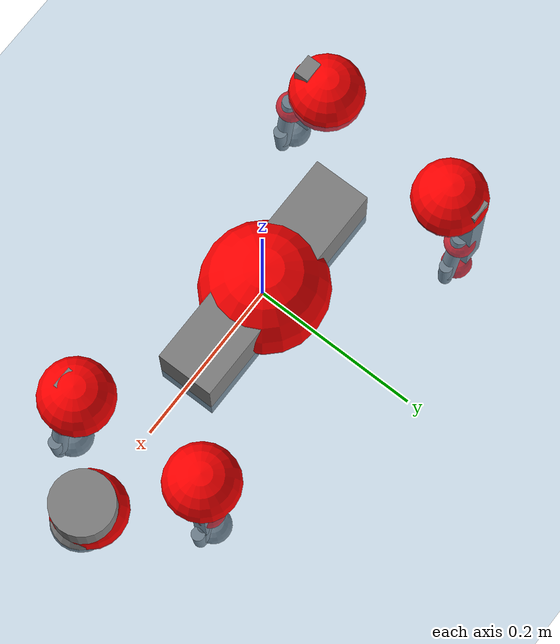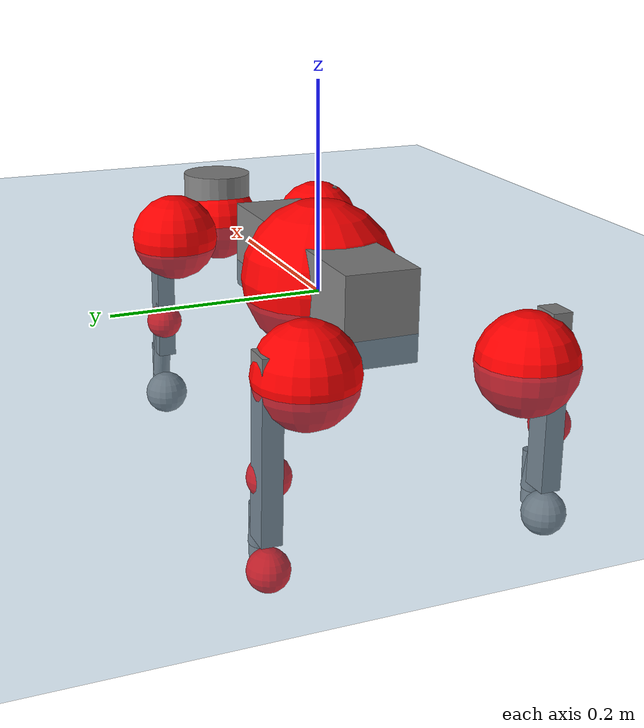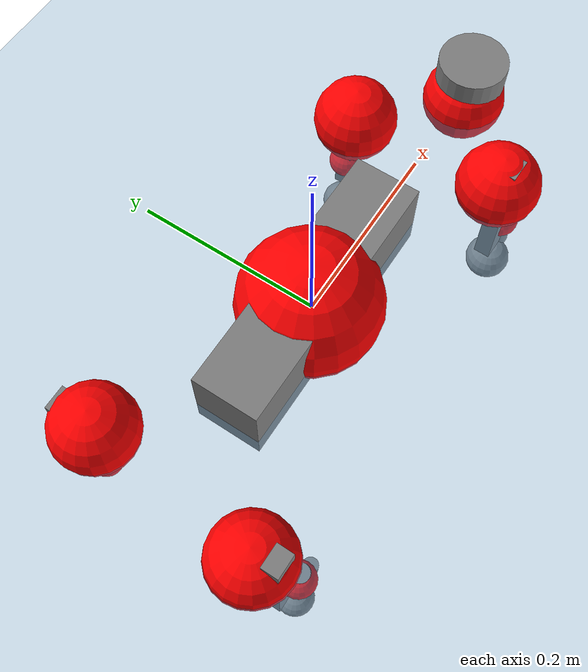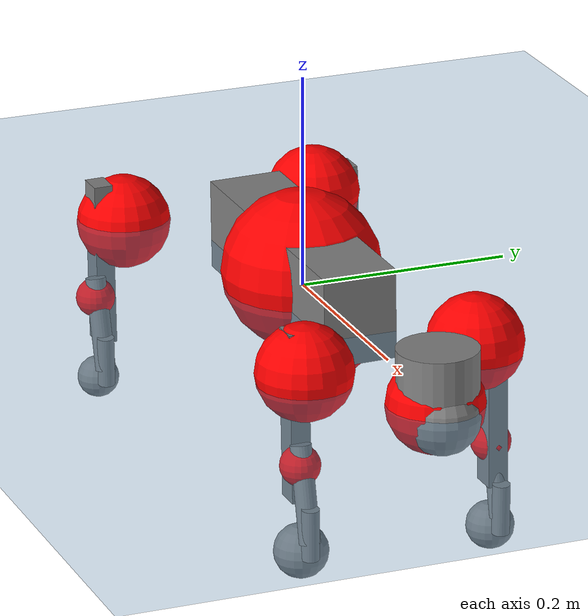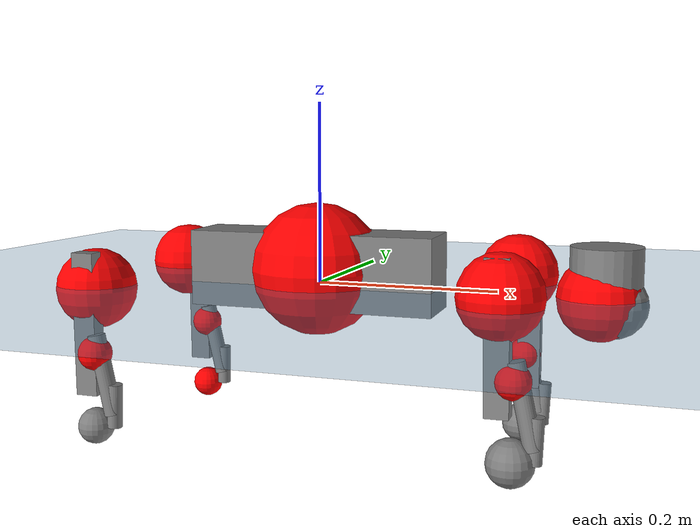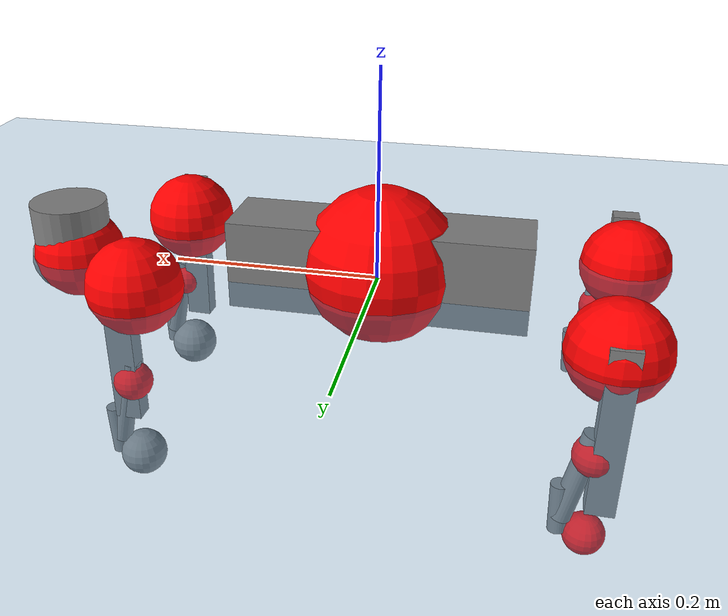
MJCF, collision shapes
<mujoco model="go2">
  <compiler angle="radian" assetdir="assets" balanceinertia="true" inertiafromgeom="false"/>

  <option timestep="0.005" density="1.2" viscosity="2e-05"/>

  <size nkey="1"/>

  <visual>
    <quality shadowsize="8192"/>
    <map shadowclip="0.5"/>
  </visual>

  <default>
    <default class="/">
      <geom contype="0" conaffinity="0" group="1" solref="-1000 -80"/>
      <site size="0.01 0.005 0.005" group="5"/>
      <general forcelimited="true" biastype="affine" gainprm="20" biasprm="0 -20 -0.5"/>
      <default class="go2">
        <joint armature="0.01" damping="0.01" frictionloss="0.2"/>
        <geom condim="1" margin="0.001"/>
        <default class="visual">
          <geom type="mesh" group="2"/>
        </default>
        <default class="collision">
          <geom group="3"/>
          <default class="foot">
            <geom size="0.022 0 0" condim="6" priority="1" friction="0.8 0.02 0.01" solimp="0.015 1 0.022"/>
          </default>
        </default>
        <default class="reward_collision_sphere">
          <geom group="5" rgba="1 0 0 1"/>
        </default>
      </default>
    </default>
  </default>

  <asset>
    <texture type="skybox" colorspace="auto" name="//unnamed_texture_0" builtin="gradient" rgb1="0.95 0.95 0.95" rgb2="0.95 0.95 0.95" width="100" height="600"/>
    <texture type="2d" colorspace="auto" name="texplane" builtin="checker" rgb1="0.345 0.575 0.748" rgb2="0.345 0.575 0.748" markrgb="1 1 1" width="512" height="512"/>
    <material name="MatPlane" class="/" texture="texplane" texuniform="true" texrepeat="2 2" specular="0.9"/>
    <material name="metal" class="/" rgba="0.9 0.95 0.95 1"/>
    <material name="black" class="/" rgba="0 0 0 1"/>
    <material name="white" class="/"/>
    <material name="gray" class="/" rgba="0.671705 0.692426 0.77427 1"/>
    <mesh name="base_0" class="/" file="base_0.obj"/>
    <mesh name="base_1" class="/" file="base_1.obj"/>
    <mesh name="base_2" class="/" file="base_2.obj"/>
    <mesh name="base_3" class="/" file="base_3.obj"/>
    <mesh name="base_4" class="/" file="base_4.obj"/>
    <mesh name="hip_0" class="/" file="hip_0.obj"/>
    <mesh name="hip_1" class="/" file="hip_1.obj"/>
    <mesh name="thigh_0" class="/" file="thigh_0.obj"/>
    <mesh name="thigh_1" class="/" file="thigh_1.obj"/>
    <mesh name="thigh_mirror_0" class="/" file="thigh_mirror_0.obj"/>
    <mesh name="thigh_mirror_1" class="/" file="thigh_mirror_1.obj"/>
    <mesh name="calf_0" class="/" file="calf_0.obj"/>
    <mesh name="calf_1" class="/" file="calf_1.obj"/>
    <mesh name="calf_mirror_0" class="/" file="calf_mirror_0.obj"/>
    <mesh name="calf_mirror_1" class="/" file="calf_mirror_1.obj"/>
    <mesh name="foot" class="/" file="foot.obj"/>
  </asset>

  <worldbody>
    <geom name="floor" class="/" size="100 100 0.125" type="plane" group="0" material="MatPlane"/>
    <light name="toplight_shadow" class="/" pos="0 0 5" dir="0.0990148 0.0990148 -0.990148" type="directional" ambient="0.04 0.04 0.04" diffuse="0.55 0.55 0.55" specular="0.12 0.12 0.12"/>
    <light name="toplight_fill" class="/" pos="0 0 5" dir="0.0990148 0.0990148 -0.990148" type="directional" castshadow="false" ambient="0.04 0.04 0.04" diffuse="0.3 0.3 0.3" specular="0.08 0.08 0.08"/>
    <body name="trunk" childclass="go2" pos="-0.00326088 5.63241e-05 0.0156493" quat="0.999973 0.00728805 0.000481751 0.000389273">
      <inertial pos="0.0208637 -0.0127879 0.000375186" quat="0.0285296 0.753344 -0.027681 0.656424" mass="2.58397" diaginertia="0.143849 0.0185336 0.000160953"/>
      <joint name="//unnamed_joint_0" type="free" armature="0" damping="0" frictionloss="0"/>
      <geom name="//unnamed_geom_1" class="visual" material="black" mesh="base_0"/>
      <geom name="//unnamed_geom_2" class="visual" material="black" mesh="base_1"/>
      <geom name="//unnamed_geom_3" class="visual" material="black" mesh="base_2"/>
      <geom name="//unnamed_geom_4" class="visual" material="white" mesh="base_3"/>
      <geom name="//unnamed_geom_5" class="visual" material="gray" mesh="base_4"/>
      <geom name="trunk_1" class="collision" size="0.139749 0.0347329 0.0423482" type="box"/>
      <geom name="trunk_2" class="collision" size="0.0371475 0.0334328" pos="0.314144 0 0.00384746" type="cylinder"/>
      <geom name="trunk_3" class="collision" size="0.0349187" pos="0.322962 0 -0.0230848"/>
      <geom name="//unnamed_geom_9" class="reward_collision_sphere" size="0.0742951"/>
      <geom name="//unnamed_geom_10" class="reward_collision_sphere" size="0.044577" pos="0.308633 0 -0.0173136"/>
      <site name="imu" pos="-0.0501227 -0.0485142 0.0773465" size="0.00742951"/>
      <camera name="track" pos="0 -1.48369 0" quat="0.707107 0.707107 0 0" mode="trackcom"/>
      <camera name="ego_camera" pos="0.343905 0 0.0173136" quat="-0.5 -0.5 0.5 0.5"/>
      <body name="FL_hip" pos="0.212834 0.0278243 -0.00733091" quat="1 0.000698682 0.000418031 0.000491712">
        <inertial pos="0.00814959 0.00199689 0.0151497" quat="0.538619 0.515312 0.442799 0.498269" mass="0.307928" diaginertia="0.00137644 0.000160899 4.48646e-06"/>
        <joint name="FL_hip_joint" pos="0 0 0" axis="0.997753 -0.0286723 0.060557" stiffness="0.057898" range="-1.04035 0.864686" armature="0.00771778" damping="0.0661097" frictionloss="0.0814268"/>
        <geom name="//unnamed_geom_11" class="visual" material="metal" mesh="hip_0"/>
        <geom name="//unnamed_geom_12" class="visual" material="gray" mesh="hip_1"/>
        <geom name="//unnamed_geom_13" class="collision" size="0.0341757 0.014859" pos="0 0.0593477 0" quat="0.707107 0.707107 0 0" type="cylinder"/>
        <geom name="//unnamed_geom_14" class="reward_collision_sphere" size="0.044577" pos="0 0.0519293 0"/>
        <body name="FL_thigh" pos="0.0125303 0.0628801 -0.0120645" quat="1 -3.86933e-05 -2.98361e-05 -3.47864e-05">
          <inertial pos="-0.00412906 -0.0167194 -0.0106573" quat="0.827572 0.0963469 -0.0492673 0.550831" mass="0.517505" diaginertia="0.010664 0.0015379 1.00236e-05"/>
          <joint name="FL_thigh_joint" pos="0 0 0" axis="-0.00268532 0.999996 -0.000374442" stiffness="0.00186945" range="-1.38401 3.53514" armature="0.0111191" damping="0" frictionloss="0.147313"/>
          <geom name="//unnamed_geom_15" class="visual" material="metal" mesh="thigh_0"/>
          <geom name="//unnamed_geom_16" class="visual" material="gray" mesh="thigh_1"/>
          <geom name="//unnamed_geom_17" class="collision" size="0.0791243 0.00910115 0.0126302" pos="0 0 -0.0409754" quat="0.707107 0 0.707107 0" type="box"/>
          <body name="FL_calf" pos="-0.00548708 0.000754893 -0.0827161" quat="1 -0.000108314 -0.000668617 7.76833e-05">
            <inertial pos="0.0237497 0.0145051 -0.0538674" quat="0.714129 -0.00463843 -0.00648752 0.699969" mass="0.100349" diaginertia="0.00290763 0.000322912 4.55512e-07"/>
            <joint name="FL_calf_joint" pos="0 0 0" axis="-0.0122523 0.99966 0.0230099" stiffness="0.0106749" range="-2.39166 -1.03161" armature="0.0100361" damping="0.0316988" frictionloss="0.0293681"/>
            <geom name="//unnamed_geom_18" class="visual" material="gray" mesh="calf_0"/>
            <geom name="//unnamed_geom_19" class="visual" material="black" mesh="calf_1"/>
            <geom name="FL_calf0" class="collision" size="0.00891541 0.044577" pos="0.00881808 0 -0.0230848" quat="0.994493 0 -0.104807 0" type="cylinder"/>
            <geom name="//unnamed_geom_21" class="collision" size="0.00817246 0.0241459" pos="0.0220452 0 -0.0569424" quat="0.999688 0 0.0249974 0" type="cylinder"/>
            <geom name="//unnamed_geom_22" class="visual" pos="0 0 -0.0819509" quat="1 0 0 0" material="black" mesh="foot"/>
            <geom name="FL_foot" class="foot" size="0.0221679" pos="-0.00220452 0 -0.0819509"/>
            <geom name="//unnamed_geom_24" class="reward_collision_sphere" size="0.0185738"/>
            <geom name="//unnamed_geom_25" class="reward_collision_sphere" size="0.0185738" pos="-0.00220452 0 -0.0819509"/>
            <site name="FL_foot" class="foot" pos="-0.00220452 0 -0.0819509" size="0.00742951"/>
          </body>
        </body>
      </body>
      <body name="FR_hip" pos="0.222605 -0.0349927 -0.00552795" quat="0.999968 -0.00216323 -0.00334277 -0.00697455">
        <inertial pos="0.00138178 -0.00387345 0.00348717" quat="0.53144 0.53557 0.494311 0.431733" mass="0.240138" diaginertia="0.00146942 0.000145829 4.16847e-06"/>
        <joint name="FR_hip_joint" pos="0 0 0" axis="0.998932 0.0177108 0.0426698" stiffness="0.0648778" range="-0.73655 1.2281" armature="0.00569359" damping="0.0599733" frictionloss="0.0707579"/>
        <geom name="//unnamed_geom_26" class="visual" pos="0 3.11091e-09 1.33433e-07" quat="4.63268e-05 1 0 0" material="metal" mesh="hip_0"/>
        <geom name="//unnamed_geom_27" class="visual" pos="0 5.04316e-09 -3.30032e-07" quat="4.63268e-05 1 0 0" material="gray" mesh="hip_1"/>
        <geom name="//unnamed_geom_28" class="collision" size="0.0341757 0.014859" pos="0 -0.0593477 0" quat="0.707107 0.707107 0 0" type="cylinder"/>
        <geom name="//unnamed_geom_29" class="reward_collision_sphere" size="0.044577" pos="0 -0.0519293 0"/>
        <body name="FR_thigh" pos="-0.000527453 -0.0611006 0.00208069" quat="0.999992 0.0017816 -0.00339657 -0.0011941">
          <inertial pos="0.00437302 0.0160625 -0.00619313" quat="0.548667 -0.000496146 0.105878 0.829309" mass="0.397265" diaginertia="0.00941512 0.0015041 6.60696e-06"/>
          <joint name="FR_thigh_joint" pos="0 0 0" axis="0.00156192 -0.999999 0.000582054" range="-3.49845 1.76177" armature="0.0107955" damping="0.085799" frictionloss="0.240313"/>
          <geom name="//unnamed_geom_30" class="visual" material="metal" mesh="thigh_mirror_0"/>
          <geom name="//unnamed_geom_31" class="visual" material="gray" mesh="thigh_mirror_1"/>
          <geom name="//unnamed_geom_32" class="collision" size="0.0791243 0.00910115 0.0126302" pos="0 0 -0.0409754" quat="0.707107 0 0.707107 0" type="box"/>
          <body name="FR_calf" pos="0.0154416 -0.00225694 -0.0828244" quat="0.999997 0.0018979 0.00112922 0.000760844">
            <inertial pos="0.0124137 0.0147511 -0.0668261" quat="0.661388 0.0472734 0.0307098 0.747923" mass="0.122431" diaginertia="0.00293203 0.000321869 5.96892e-07"/>
            <joint name="FR_calf_joint" pos="0 0 0" axis="0.00605178 -0.999964 -0.00587132" stiffness="0.0246313" range="0.861327 2.78792" armature="0.00806452" damping="0.0602143" frictionloss="0.212353"/>
            <geom name="//unnamed_geom_33" class="visual" material="gray" mesh="calf_mirror_0"/>
            <geom name="//unnamed_geom_34" class="visual" material="black" mesh="calf_mirror_1"/>
            <geom name="FR_calf0" class="collision" size="0.00965836 0.044577" pos="0.0110226 0 -0.0230848" quat="0.995004 0 -0.0998334 0" type="cylinder"/>
            <geom name="//unnamed_geom_36" class="collision" size="0.00817246 0.0241459" pos="0.0220452 0 -0.0569424" quat="0.999688 0 0.0249974 0" type="cylinder"/>
            <geom name="//unnamed_geom_37" class="visual" pos="0 0 -0.0819509" quat="1 0 0 0" material="black" mesh="foot"/>
            <geom name="FR_foot" class="foot" size="0.0249602" pos="-0.00220452 0 -0.0819509"/>
            <geom name="//unnamed_geom_39" class="reward_collision_sphere" size="0.0185738"/>
            <geom name="//unnamed_geom_40" class="reward_collision_sphere" size="0.0185738" pos="-0.00220452 0 -0.0819509"/>
            <site name="FR_foot" class="foot" pos="-0.00220452 0 -0.0819509" size="0.00742951"/>
          </body>
        </body>
      </body>
      <body name="RL_hip" pos="-0.211273 0.0454251 -0.011207" quat="0.999995 -0.00246659 -0.000831739 0.00169223">
        <inertial pos="0.0121344 0.0155406 0.0156891" quat="0.514589 0.523178 0.477435 0.483259" mass="0.322953" diaginertia="0.00178305 0.000136102 5.21844e-06"/>
        <joint name="RL_hip_joint" pos="0 0 0" axis="-0.99774 0.0114978 0.0661988" range="-0.776104 0.759272" armature="0.00252768" damping="0.00536432" frictionloss="0.144977"/>
        <geom name="//unnamed_geom_41" class="visual" pos="-6.25068e-09 0 -1.22528e-06" quat="4.63268e-05 0 1 0" material="metal" mesh="hip_0"/>
        <geom name="//unnamed_geom_42" class="visual" pos="-1.01331e-08 0 -1.08665e-06" quat="4.63268e-05 0 1 0" material="gray" mesh="hip_1"/>
        <geom name="//unnamed_geom_43" class="collision" size="0.0341757 0.014859" pos="0 0.0593477 0" quat="0.707107 0.707107 0 0" type="cylinder"/>
        <geom name="//unnamed_geom_44" class="reward_collision_sphere" size="0.044577" pos="0 0.0519293 0"/>
        <body name="RL_thigh" pos="-0.000741406 0.0842486 -0.0152915" quat="0.999983 0.00566042 -0.000911884 0.000628331">
          <inertial pos="-0.02054 -0.00499094 0.00367643" quat="0.829663 0.0846824 -0.0204293 0.551427" mass="0.38043" diaginertia="0.00623644 0.000988871 5.0406e-06"/>
          <joint name="RL_thigh_joint" pos="0 0 0" axis="0.0567135 0.996686 -0.0583174" range="-0.315429 4.502" armature="0.00613608" damping="0.0879401" frictionloss="0.0883065"/>
          <geom name="//unnamed_geom_45" class="visual" material="metal" mesh="thigh_0"/>
          <geom name="//unnamed_geom_46" class="visual" material="gray" mesh="thigh_1"/>
          <geom name="//unnamed_geom_47" class="collision" size="0.0791243 0.00910115 0.0126302" pos="0 0 -0.0409754" quat="0.707107 0 0.707107 0" type="box"/>
          <body name="RL_calf" pos="0.00991538 -0.00548063 -0.0701089" quat="0.999981 0.0016667 -0.00495779 0.00319642">
            <inertial pos="0.0222346 -0.0115174 -0.0385041" quat="0.74969 -0.0189023 -0.0393669 0.660347" mass="0.110551" diaginertia="0.00279073 0.000416901 4.61545e-07"/>
            <joint name="RL_calf_joint" pos="0 0 0" axis="-0.000365022 1 0.000243752" stiffness="0.0207532" range="-2.80309 -0.502424" armature="0.0024813" damping="0.0825559" frictionloss="0.145429"/>
            <geom name="//unnamed_geom_48" class="visual" material="gray" mesh="calf_0"/>
            <geom name="//unnamed_geom_49" class="visual" material="black" mesh="calf_1"/>
            <geom name="RL_calf0" class="collision" size="0.00965836 0.044577" pos="0.0110226 0 -0.0230848" quat="0.995004 0 -0.0998334 0" type="cylinder"/>
            <geom name="//unnamed_geom_51" class="collision" size="0.00817246 0.0241459" pos="0.0220452 0 -0.0569424" quat="0.999688 0 0.0249974 0" type="cylinder"/>
            <geom name="//unnamed_geom_52" class="visual" pos="0 0 -0.0819509" quat="1 0 0 0" material="black" mesh="foot"/>
            <geom name="RL_foot" class="foot" size="0.0119812" pos="-0.00220452 0 -0.0819509"/>
            <geom name="//unnamed_geom_54" class="reward_collision_sphere" size="0.0185738"/>
            <geom name="//unnamed_geom_55" class="reward_collision_sphere" size="0.0185738" pos="-0.00220452 0 -0.0819509"/>
            <site name="RL_foot" class="foot" pos="-0.00220452 0 -0.0819509" size="0.00742951"/>
          </body>
        </body>
      </body>
      <body name="RR_hip" pos="-0.229802 -0.0372433 -0.019444" quat="0.999999 0.000753596 0.000121528 0.000904556">
        <inertial pos="0.0185658 0.00846116 -0.000846186" quat="0.558973 0.485845 0.467588 0.48256" mass="0.270824" diaginertia="0.000940957 0.000106483 2.88523e-06"/>
        <joint name="RR_hip_joint" pos="0 0 0" axis="-0.996492 -0.0836339 0.00294807" range="-0.881929 1.03996" armature="0.00766618" damping="0.020427" frictionloss="0.0258493"/>
        <geom name="//unnamed_geom_56" class="visual" pos="6.2382e-09 3.11091e-09 -1.35871e-06" quat="2.14617e-09 4.63268e-05 4.63268e-05 -1" material="metal" mesh="hip_0"/>
        <geom name="//unnamed_geom_57" class="visual" pos="1.0164e-08 5.04316e-09 -7.56615e-07" quat="2.14617e-09 4.63268e-05 4.63268e-05 -1" material="gray" mesh="hip_1"/>
        <geom name="//unnamed_geom_58" class="collision" size="0.0341757 0.014859" pos="0 -0.0593477 0" quat="0.707107 0.707107 0 0" type="cylinder"/>
        <geom name="//unnamed_geom_59" class="reward_collision_sphere" size="0.044577" pos="0 -0.0519293 0"/>
        <body name="RR_thigh" pos="0.00327223 -0.0769193 0.00516129" quat="0.999999 0.000559563 0.00128826 -0.000810474">
          <inertial pos="-0.0118725 0.0257066 0.00138411" quat="0.573909 0.0215355 0.102485 0.812195" mass="0.612402" diaginertia="0.00868727 0.00142008 7.47712e-06"/>
          <joint name="RR_thigh_joint" pos="0 0 0" axis="-0.0116746 -0.999218 0.0377849" range="-4.54361 0.765826" armature="0.00792994" damping="0.0367923" frictionloss="0.189752"/>
          <geom name="//unnamed_geom_60" class="visual" material="metal" mesh="thigh_mirror_0"/>
          <geom name="//unnamed_geom_61" class="visual" material="gray" mesh="thigh_mirror_1"/>
          <geom name="//unnamed_geom_62" class="collision" size="0.0791243 0.00910115 0.0126302" pos="0 0 -0.0409754" quat="0.707107 0 0.707107 0" type="box"/>
          <body name="RR_calf" pos="0.0148538 -0.0119341 -0.0703638" quat="0.999965 0.00788818 0.00268851 0.00106863">
            <inertial pos="0.000568134 -0.000701223 -0.0547864" quat="0.65408 -0.0190585 0.0225798 0.755848" mass="0.0914378" diaginertia="0.00222562 0.000255305 4.64103e-07"/>
            <joint name="RR_calf_joint" pos="0 0 0" axis="0.0770435 -0.996748 -0.0236266" stiffness="0.0737601" range="0.567124 2.82991" armature="0.00731617" damping="0.0777764" frictionloss="0.190848"/>
            <geom name="//unnamed_geom_63" class="visual" material="gray" mesh="calf_mirror_0"/>
            <geom name="//unnamed_geom_64" class="visual" material="black" mesh="calf_mirror_1"/>
            <geom name="RR_calf0" class="collision" size="0.00965836 0.044577" pos="0.0110226 0 -0.0230848" quat="0.995004 0 -0.0998334 0" type="cylinder"/>
            <geom name="//unnamed_geom_66" class="collision" size="0.00817246 0.0241459" pos="0.0220452 0 -0.0569424" quat="0.999688 0 0.0249974 0" type="cylinder"/>
            <geom name="//unnamed_geom_67" class="visual" pos="0 0 -0.0819509" quat="1 0 0 0" material="black" mesh="foot"/>
            <geom name="RR_foot" class="foot" size="0.0197964" pos="-0.00220452 0 -0.0819509"/>
            <geom name="//unnamed_geom_69" class="reward_collision_sphere" size="0.0185738"/>
            <geom name="//unnamed_geom_70" class="reward_collision_sphere" size="0.0185738" pos="-0.00220452 0 -0.0819509"/>
            <site name="RR_foot" class="foot" pos="-0.00220452 0 -0.0819509" size="0.00742951"/>
          </body>
        </body>
      </body>
    </body>
  </worldbody>

  <contact>
    <pair class="/" geom1="floor" geom2="FL_foot" name="//unnamed_contact_0"/>
    <pair class="/" geom1="floor" geom2="FR_foot" name="//unnamed_contact_1"/>
    <pair class="/" geom1="floor" geom2="RL_foot" name="//unnamed_contact_2"/>
    <pair class="/" geom1="floor" geom2="RR_foot" name="//unnamed_contact_3"/>
  </contact>

  <actuator>
    <general name="FL_hip" class="/" joint="FL_hip_joint" forcerange="-18.0473 18.0473" gainprm="13.1809" biasprm="0 -13.1809 -0.423933"/>
    <general name="FL_thigh" class="/" joint="FL_thigh_joint" forcerange="-14.804 14.804" gainprm="13.1809" biasprm="0 -13.1809 -0.423933"/>
    <general name="FL_calf" class="/" joint="FL_calf_joint" forcerange="-21.7167 21.7167" gainprm="13.1809" biasprm="0 -13.1809 -0.423933"/>
    <general name="FR_hip" class="/" joint="FR_hip_joint" forcerange="-20.2013 20.2013" gainprm="13.1809" biasprm="0 -13.1809 -0.423933"/>
    <general name="FR_thigh" class="/" joint="FR_thigh_joint" forcerange="-11.5302 11.5302" gainprm="13.1809" biasprm="0 -13.1809 -0.423933"/>
    <general name="FR_calf" class="/" joint="FR_calf_joint" forcerange="-34.0942 34.0942" gainprm="13.1809" biasprm="0 -13.1809 -0.423933"/>
    <general name="RL_hip" class="/" joint="RL_hip_joint" forcerange="-18.4005 18.4005" gainprm="13.1809" biasprm="0 -13.1809 -0.423933"/>
    <general name="RL_thigh" class="/" joint="RL_thigh_joint" forcerange="-27.8454 27.8454" gainprm="13.1809" biasprm="0 -13.1809 -0.423933"/>
    <general name="RL_calf" class="/" joint="RL_calf_joint" forcerange="-15.8823 15.8823" gainprm="13.1809" biasprm="0 -13.1809 -0.423933"/>
    <general name="RR_hip" class="/" joint="RR_hip_joint" forcerange="-17.9296 17.9296" gainprm="13.1809" biasprm="0 -13.1809 -0.423933"/>
    <general name="RR_thigh" class="/" joint="RR_thigh_joint" forcerange="-22.084 22.084" gainprm="13.1809" biasprm="0 -13.1809 -0.423933"/>
    <general name="RR_calf" class="/" joint="RR_calf_joint" forcerange="-21.197 21.197" gainprm="13.1809" biasprm="0 -13.1809 -0.423933"/>
  </actuator>

  <sensor>
    <gyro site="imu" name="imu_angular_velocity"/>
    <velocimeter site="imu" name="imu_linear_velocity"/>
    <framelinvel objtype="site" objname="FL_foot" name="FL_foot_global_linear_velocity"/>
    <framelinvel objtype="site" objname="FR_foot" name="FR_foot_global_linear_velocity"/>
    <framelinvel objtype="site" objname="RL_foot" name="RL_foot_global_linear_velocity"/>
    <framelinvel objtype="site" objname="RR_foot" name="RR_foot_global_linear_velocity"/>
  </sensor>

  <keyframe>
    <key name="home" qpos="0 0 0.325 1 0 0 0 0.1 0.8 -1.5 -0.1 -0.8 1.5 -0.1 0.8 -1.5 0.1 -0.8 1.5"/>
  </keyframe>
</mujoco>
